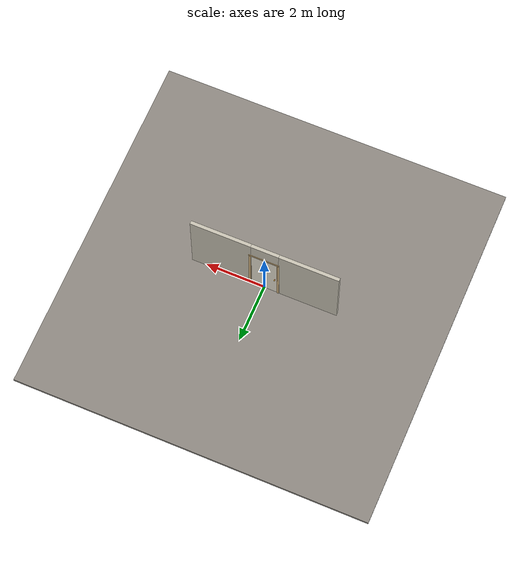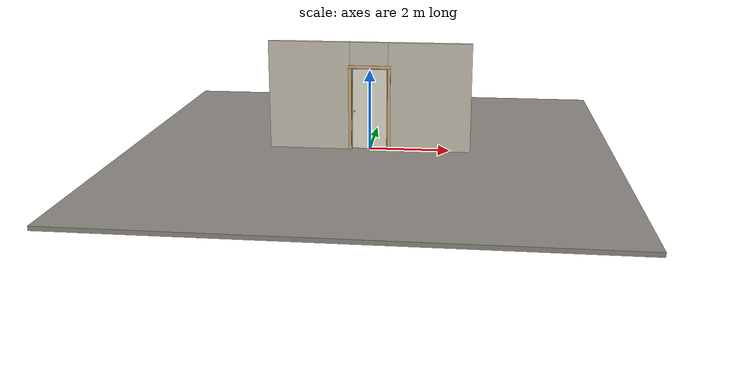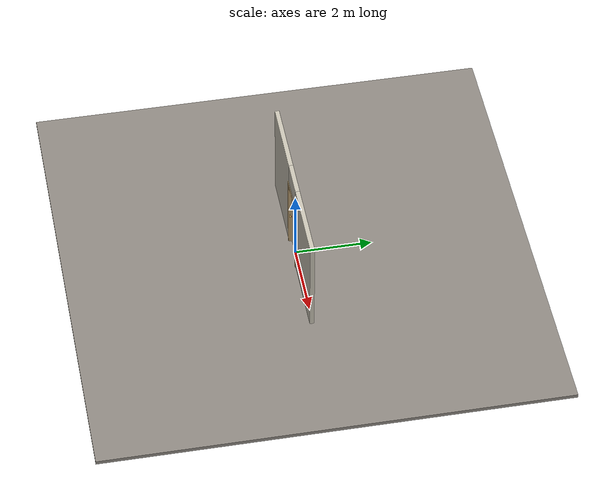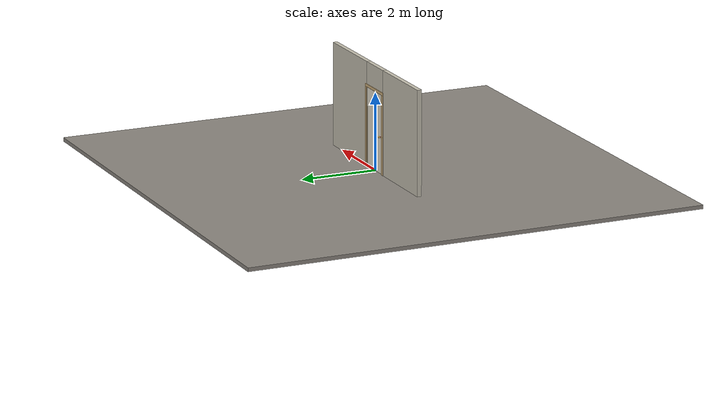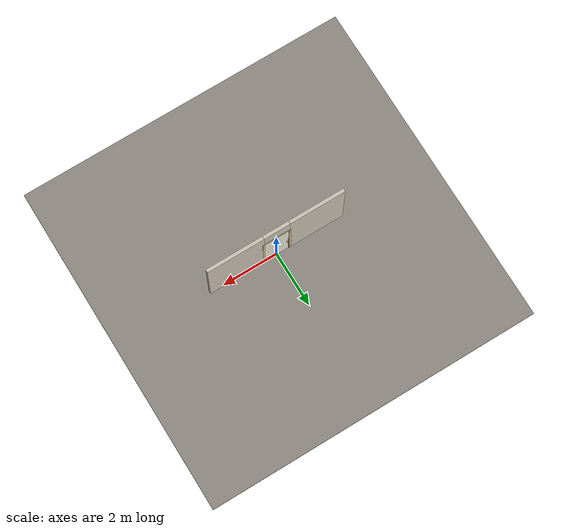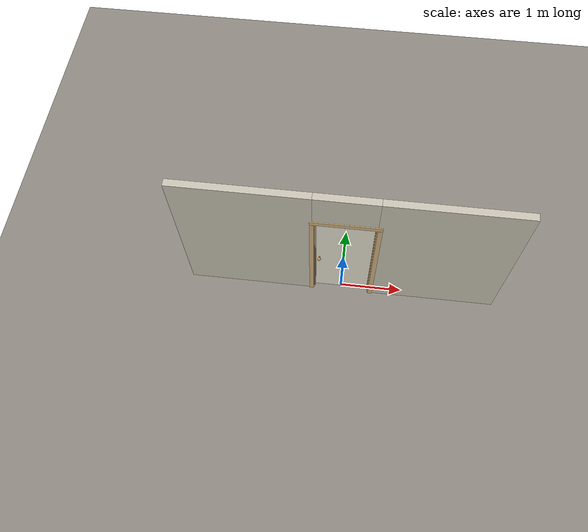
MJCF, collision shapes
<?xml version="1.0" ?>
<mujoco model="db0363_swing_single_full">
  <compiler angle="radian" meshdir="../../hardware" texturedir="../../textures" autolimits="true" inertiafromgeom="false"/>
  <option timestep="0.002" integrator="implicitfast" cone="elliptic" impratio="10" noslip_iterations="3">
    <flag multiccd="enable"/>
  </option>
  <size memory="16M"/>
  <default>
    <geom condim="4" solref="0.005 1" solimp="0.95 0.99 0.001"/>
    <joint solreflimit="0.005 1" solimplimit="0.95 0.99 0.001"/>
    <tendon solreflimit="0.005 1"/>
    <equality solref="0.002 1"/>
  </default>
  <visual>
    <headlight ambient="0.4 0.4 0.4" diffuse="0.7 0.7 0.7" specular="0.2 0.2 0.2"/>
    <quality shadowsize="4096"/>
    <map znear="0.01" zfar="60"/>
  </visual>
  <asset>
    <mesh name="hinge_96510cf394" file="hinge_96510cf394.obj"/>
    <mesh name="hinge_jamb_7fd4ca52b2" file="hinge_jamb_7fd4ca52b2.obj"/>
    <mesh name="knob_d1888f6f03" file="knob_d1888f6f03.obj"/>
    <material name="mat_floor" rgba="0.55 0.53 0.5 1" specular="0.2" shininess="0.15" reflectance="0"/>
    <material name="mat_wall" rgba="0.78 0.76 0.7 1" specular="0.2" shininess="0.1" reflectance="0"/>
    <material name="mat_leaf" rgba="0.9 0.88 0.82 1" specular="0.2" shininess="0.43" reflectance="0"/>
    <material name="mat_leaf_louver" rgba="0.765 0.748 0.697 1" specular="0.2" shininess="0.4" reflectance="0"/>
    <material name="mat_hinge" rgba="0.65 0.66 0.68 1" specular="0.74" shininess="0.5" reflectance="0.36"/>
    <material name="mat_op_brass" rgba="0.85 0.66 0.3 1" specular="0.8" shininess="0.75" reflectance="0.4"/>
    <material name="mat_trim" rgba="0.85 0.66 0.3 1" specular="0.8" shininess="0.75" reflectance="0.4"/>
    <material name="mat_bolt" rgba="0.85 0.66 0.3 1" specular="0.8" shininess="0.75" reflectance="0.4"/>
    <material name="mat_frame" rgba="0.82 0.7 0.5 1" specular="0.2" shininess="0.45" reflectance="0"/>
    <material name="mat_seal" rgba="0.1 0.1 0.1 1" specular="0.2" shininess="0.1" reflectance="0"/>
    <texture name="skybox" type="skybox" builtin="gradient" rgb1="0.6 0.7 0.85" rgb2="0.9 0.92 0.95" width="256" height="256"/>
  </asset>
  <worldbody>
    <light name="sun" pos="1.5 -2.5 4" dir="-0.3 0.5 -0.8" directional="true" diffuse="0.8 0.8 0.8" specular="0.3 0.3 0.3" castshadow="true"/>
    <light name="fill" pos="-1.5 2.5 3" dir="0.3 -0.5 -0.7" directional="true" diffuse="0.35 0.35 0.4" castshadow="false"/>
    <camera name="robot_view" pos="0 -2.575187 1.734312" xyaxes="1 0 0 0 0.26963 0.962964" fovy="52"/>
    <camera name="far_view" pos="0 2.509187 1.734312" xyaxes="-1 0 0 0 -0.26963 0.962964" fovy="52"/>
    <camera name="iso" pos="-1.932062 -2.168438 2.141063" xyaxes="0.741536 -0.670913 0 0.242917 0.268487 0.932151" fovy="46"/>
    <camera name="detail_handle" pos="-0.1915 -0.864 1.245" xyaxes="0.97561 0.219512 0 -0.070934 0.315262 0.94635" fovy="38"/>
    <geom name="floor" type="box" size="6 6 0.05" pos="0 0 -0.05" material="mat_floor" group="0" contype="1" conaffinity="1" friction="0.8 0.005 0.0001" density="2400"/>
    <geom name="wall_left" type="box" size="1.00775 0.0575 1.35" pos="-1.49225 -0.033 1.35" material="mat_wall" group="0" contype="1" conaffinity="1" friction="0.6 0.005 0.0001" density="800"/>
    <geom name="wall_right" type="box" size="1.02275 0.0575 1.35" pos="1.47725 -0.033 1.35" material="mat_wall" group="0" contype="1" conaffinity="1" friction="0.6 0.005 0.0001" density="800"/>
    <geom name="wall_header" type="box" size="0.4695 0.0575 0.303" pos="-0.015 -0.033 2.397" material="mat_wall" group="0" contype="1" conaffinity="1" friction="0.6 0.005 0.0001" density="800"/>
    <geom name="hinge_0_jamb" type="mesh" mesh="hinge_jamb_7fd4ca52b2" pos="0.4325 0.0245 0.259" quat="0 0 0 1" material="mat_hinge" group="1" contype="0" conaffinity="0" density="7850"/>
    <geom name="hinge_1_jamb" type="mesh" mesh="hinge_jamb_7fd4ca52b2" pos="0.4325 0.0245 1.025" quat="0 0 0 1" material="mat_hinge" group="1" contype="0" conaffinity="0" density="7850"/>
    <geom name="hinge_2_jamb" type="mesh" mesh="hinge_jamb_7fd4ca52b2" pos="0.4325 0.0245 1.861" quat="0 0 0 1" material="mat_hinge" group="1" contype="0" conaffinity="0" density="7850"/>
    <geom name="jamb_hinge" type="box" size="0.0095 0.0575 1.0225" pos="0.445 -0.033 1.0225" material="mat_frame" group="0" contype="1" conaffinity="1" friction="0.6 0.005 0.0001" density="400"/>
    <geom name="strike_965_wall_n" type="box" size="0.0245 0.041325 0.0167" pos="-0.46 -0.049175 0.965" material="mat_frame" group="0" contype="1" conaffinity="1" friction="0.6 0.005 0.0001" density="400"/>
    <geom name="strike_965_wall_p" type="box" size="0.0245 0.008 0.0167" pos="-0.46 0.01585 0.965" material="mat_frame" group="0" contype="1" conaffinity="1" friction="0.6 0.005 0.0001" density="400"/>
    <geom name="strike_965_ramp" type="box" size="0.0245 0.01649 0.0167" pos="-0.464636 0.028673 0.965" quat="0.977148 0 0 0.212558" material="mat_frame" group="0" contype="1" conaffinity="1" friction="0.12 0.005 0.0001" density="400"/>
    <geom name="strike_965_back" type="box" size="0.01615 0.00785 0.0167" pos="-0.46835 0 0.965" material="mat_frame" group="0" contype="1" conaffinity="1" friction="0.6 0.005 0.0001" density="400"/>
    <geom name="jamb_strike_0" type="box" size="0.0245 0.0575 0.47415" pos="-0.46 -0.033 0.47415" material="mat_frame" group="0" contype="1" conaffinity="1" friction="0.6 0.005 0.0001" density="400"/>
    <geom name="jamb_strike_1" type="box" size="0.0245 0.0575 0.53165" pos="-0.46 -0.033 1.51335" material="mat_frame" group="0" contype="1" conaffinity="1" friction="0.6 0.005 0.0001" density="400"/>
    <geom name="jamb_head" type="box" size="0.4695 0.0575 0.0095" pos="-0.015 -0.033 2.0545" material="mat_frame" group="0" contype="1" conaffinity="1" friction="0.6 0.005 0.0001" density="400"/>
    <geom name="head_stud" type="box" size="0.4695 0.0575 0.015" pos="-0.015 -0.033 2.079" material="mat_wall" group="0" contype="1" conaffinity="1" friction="0.6 0.005 0.0001" density="500"/>
    <geom name="stop_hinge" type="box" size="0.0055 0.016 1.0225" pos="0.43 -0.034 1.0225" material="mat_frame" group="0" contype="1" conaffinity="1" friction="0.6 0.005 0.0001" density="400"/>
    <geom name="stop_strike" type="box" size="0.0055 0.016 1.0225" pos="-0.43 -0.034 1.0225" material="mat_frame" group="0" contype="1" conaffinity="1" friction="0.6 0.005 0.0001" density="400"/>
    <geom name="stop_head" type="box" size="0.4355 0.016 0.0055" pos="0 -0.034 2.0395" material="mat_frame" group="0" contype="1" conaffinity="1" friction="0.6 0.005 0.0001" density="400"/>
    <geom name="seal_hinge" type="box" size="0.004 0.0015 1.0225" pos="0.4325 -0.019 1.0225" material="mat_seal" group="1" contype="0" conaffinity="0" density="1100"/>
    <geom name="seal_strike" type="box" size="0.004 0.0015 1.0225" pos="-0.4325 -0.019 1.0225" material="mat_seal" group="1" contype="0" conaffinity="0" density="1100"/>
    <geom name="seal_head" type="box" size="0.4155 0.0015 0.008" pos="0 -0.019 2.033" material="mat_seal" group="1" contype="0" conaffinity="0" density="1100"/>
    <geom name="casing_l_n" type="box" size="0.035 0.008 1.032" pos="-0.4845 -0.0985 1.0225" material="mat_frame" group="2" contype="0" conaffinity="0" density="400"/>
    <geom name="casing_r_n" type="box" size="0.035 0.008 1.032" pos="0.4845 -0.0985 1.0225" material="mat_frame" group="2" contype="0" conaffinity="0" density="400"/>
    <geom name="casing_h_n" type="box" size="0.5195 0.008 0.035" pos="0 -0.0985 2.094" material="mat_frame" group="2" contype="0" conaffinity="0" density="400"/>
    <geom name="casing_l_p" type="box" size="0.035 0.008 1.032" pos="-0.4845 0.0325 1.0225" material="mat_frame" group="2" contype="0" conaffinity="0" density="400"/>
    <geom name="casing_r_p" type="box" size="0.035 0.008 1.032" pos="0.4845 0.0325 1.0225" material="mat_frame" group="2" contype="0" conaffinity="0" density="400"/>
    <geom name="casing_h_p" type="box" size="0.5195 0.008 0.035" pos="0 0.0325 2.094" material="mat_frame" group="2" contype="0" conaffinity="0" density="400"/>
    <site name="approach_point" pos="0 -1.5 0" quat="1 0 0 0" size="0.05" rgba="0.2 0.9 0.2 0.5" group="4"/>
    <site name="goal_point" pos="0 1.5 0" quat="1 0 0 0" size="0.05" rgba="0.2 0.9 0.2 0.5" group="4"/>
    <site name="door_plane_center" pos="0 0 1.0225" quat="1 0 0 0" size="0.02" rgba="0.2 0.9 0.2 0.5" group="4"/>
    <body name="leaf" pos="0.4355 0 0">
      <inertial pos="-0.423578 0.0004 1.025662" mass="14.713015" quat="0.499623 0.500895 -0.499091 0.500389" diaginertia="0.966715266 5.093692537 6.057199931"/>
      <joint name="leaf_hinge" type="hinge" axis="0 0 -1" pos="-0.003 0.0245 0" limited="true" range="0 1.745329" solreflimit="0.02 1" damping="2.204501" frictionloss="1.796879" stiffness="6.6" springref="-0.409091" armature="0.02"/>
      <geom name="leaf_slab" type="box" size="0.432 0.0175 1.016" pos="-0.435 0 1.025" material="mat_leaf" group="0" contype="1" conaffinity="1" friction="0.35 0.005 0.0001" density="1"/>
      <geom name="leaf_louver_0" type="box" size="0.33696 0.002 0.026984" pos="-0.435 0 1.091339" quat="0.953717 0.300706 0 0" material="mat_leaf_louver" group="1" contype="0" conaffinity="0" density="1"/>
      <geom name="leaf_louver_1" type="box" size="0.33696 0.002 0.026984" pos="-0.435 0 1.142736" quat="0.953717 0.300706 0 0" material="mat_leaf_louver" group="1" contype="0" conaffinity="0" density="1"/>
      <geom name="leaf_louver_2" type="box" size="0.33696 0.002 0.026984" pos="-0.435 0 1.194134" quat="0.953717 0.300706 0 0" material="mat_leaf_louver" group="1" contype="0" conaffinity="0" density="1"/>
      <geom name="leaf_louver_3" type="box" size="0.33696 0.002 0.026984" pos="-0.435 0 1.245532" quat="0.953717 0.300706 0 0" material="mat_leaf_louver" group="1" contype="0" conaffinity="0" density="1"/>
      <geom name="leaf_louver_4" type="box" size="0.33696 0.002 0.026984" pos="-0.435 0 1.296929" quat="0.953717 0.300706 0 0" material="mat_leaf_louver" group="1" contype="0" conaffinity="0" density="1"/>
      <geom name="leaf_louver_5" type="box" size="0.33696 0.002 0.026984" pos="-0.435 0 1.348327" quat="0.953717 0.300706 0 0" material="mat_leaf_louver" group="1" contype="0" conaffinity="0" density="1"/>
      <geom name="leaf_louver_6" type="box" size="0.33696 0.002 0.026984" pos="-0.435 0 1.399725" quat="0.953717 0.300706 0 0" material="mat_leaf_louver" group="1" contype="0" conaffinity="0" density="1"/>
      <geom name="leaf_louver_7" type="box" size="0.33696 0.002 0.026984" pos="-0.435 0 1.451122" quat="0.953717 0.300706 0 0" material="mat_leaf_louver" group="1" contype="0" conaffinity="0" density="1"/>
      <geom name="leaf_louver_8" type="box" size="0.33696 0.002 0.026984" pos="-0.435 0 1.50252" quat="0.953717 0.300706 0 0" material="mat_leaf_louver" group="1" contype="0" conaffinity="0" density="1"/>
      <geom name="leaf_louver_9" type="box" size="0.33696 0.002 0.026984" pos="-0.435 0 1.553918" quat="0.953717 0.300706 0 0" material="mat_leaf_louver" group="1" contype="0" conaffinity="0" density="1"/>
      <geom name="leaf_louver_10" type="box" size="0.33696 0.002 0.026984" pos="-0.435 0 1.605315" quat="0.953717 0.300706 0 0" material="mat_leaf_louver" group="1" contype="0" conaffinity="0" density="1"/>
      <geom name="leaf_louver_11" type="box" size="0.33696 0.002 0.026984" pos="-0.435 0 1.656713" quat="0.953717 0.300706 0 0" material="mat_leaf_louver" group="1" contype="0" conaffinity="0" density="1"/>
      <geom name="leaf_louver_12" type="box" size="0.33696 0.002 0.026984" pos="-0.435 0 1.708111" quat="0.953717 0.300706 0 0" material="mat_leaf_louver" group="1" contype="0" conaffinity="0" density="1"/>
      <geom name="leaf_louver_13" type="box" size="0.33696 0.002 0.026984" pos="-0.435 0 1.759508" quat="0.953717 0.300706 0 0" material="mat_leaf_louver" group="1" contype="0" conaffinity="0" density="1"/>
      <geom name="leaf_louver_14" type="box" size="0.33696 0.002 0.026984" pos="-0.435 0 1.810906" quat="0.953717 0.300706 0 0" material="mat_leaf_louver" group="1" contype="0" conaffinity="0" density="1"/>
      <geom name="leaf_louver_15" type="box" size="0.33696 0.002 0.026984" pos="-0.435 0 1.862304" quat="0.953717 0.300706 0 0" material="mat_leaf_louver" group="1" contype="0" conaffinity="0" density="1"/>
      <geom name="leaf_louver_16" type="box" size="0.33696 0.002 0.026984" pos="-0.435 0 1.913701" quat="0.953717 0.300706 0 0" material="mat_leaf_louver" group="1" contype="0" conaffinity="0" density="1"/>
      <geom name="hinge_0" type="mesh" mesh="hinge_96510cf394" pos="-0.003 0.0245 0.259" quat="0 0 0 1" material="mat_hinge" group="1" contype="0" conaffinity="0" density="7850"/>
      <geom name="hinge_1" type="mesh" mesh="hinge_96510cf394" pos="-0.003 0.0245 1.025" quat="0 0 0 1" material="mat_hinge" group="1" contype="0" conaffinity="0" density="7850"/>
      <geom name="hinge_2" type="mesh" mesh="hinge_96510cf394" pos="-0.003 0.0245 1.861" quat="0 0 0 1" material="mat_hinge" group="1" contype="0" conaffinity="0" density="7850"/>
      <geom name="leaf_latch_bolt_faceplate" type="box" size="0.0006 0.01235 0.0267" pos="-0.8664 0 0.965" material="mat_bolt" group="1" contype="0" conaffinity="0" density="8500"/>
      <site name="leaf_edge_mid" pos="-0.867 0 1.016" quat="1 0 0 0" size="0.02" rgba="0.2 0.9 0.2 0.5" group="4"/>
      <body name="leaf_handle" pos="-0.807 0 0.965">
        <inertial pos="0 0 0" mass="1.143961" quat="0.707107 0 0 -0.707107" diaginertia="0.00031237 0.003706292 0.003706292"/>
        <joint name="leaf_handle_hinge" type="hinge" axis="0 1 0" limited="true" range="0 0.87" damping="0.143613" frictionloss="0.038" stiffness="0.5" springref="-0.5" armature="0.01"/>
        <geom name="leaf_handle_spindle" type="cylinder" size="0.006 0.0255" pos="0 0 0" quat="0.707107 -0.707107 0 0" material="mat_op_brass" group="1" contype="0" conaffinity="0" density="7850"/>
        <geom name="leaf_handle_knob_n" type="mesh" mesh="knob_d1888f6f03" pos="0 -0.0175 0" quat="0 0 -0.707107 0.707107" material="mat_op_brass" group="1" contype="0" conaffinity="0" density="3000"/>
        <geom name="leaf_handle_knob_col_n" type="sphere" size="0.0243" pos="0 -0.064 0" material="mat_op_brass" group="0" contype="1" conaffinity="1" friction="0.9 0.01 0.0001" density="3000"/>
        <geom name="leaf_handle_knob_neck_n" type="cylinder" size="0.011 0.012" pos="0 -0.0295 0" quat="0.707107 -0.707107 0 0" material="mat_op_brass" group="3" contype="1" conaffinity="1" rgba="0.8 0.3 0.3 0.25" friction="0.6 0.005 0.0001" density="3000"/>
        <geom name="leaf_handle_knob_p" type="mesh" mesh="knob_d1888f6f03" pos="0 0.0175 0" quat="0 0 0.707107 0.707107" material="mat_op_brass" group="1" contype="0" conaffinity="0" density="3000"/>
        <geom name="leaf_handle_knob_col_p" type="sphere" size="0.0243" pos="0 0.064 0" material="mat_op_brass" group="0" contype="1" conaffinity="1" friction="0.9 0.01 0.0001" density="3000"/>
        <geom name="leaf_handle_knob_neck_p" type="cylinder" size="0.011 0.012" pos="0 0.0295 0" quat="0.707107 -0.707107 0 0" material="mat_op_brass" group="3" contype="1" conaffinity="1" rgba="0.8 0.3 0.3 0.25" friction="0.6 0.005 0.0001" density="3000"/>
        <site name="leaf_handle_grip_n" pos="0 -0.064 0" quat="1 0 0 0" size="0.012" rgba="0.2 0.9 0.2 0.5" group="4"/>
        <site name="leaf_handle_grip_p" pos="0 0.064 0" quat="1 0 0 0" size="0.012" rgba="0.2 0.9 0.2 0.5" group="4"/>
      </body>
      <body name="leaf_latch_bolt" pos="-0.867 0 0.965">
        <inertial pos="0.00865 0 0" mass="0.041419" quat="0.92388 0.382683 0 0" diaginertia="0.000000798 0.000005598 0.000005598"/>
        <joint name="leaf_latch_bolt_slide" type="slide" axis="1 0 0" limited="true" range="0 0.0127" damping="2" frictionloss="0.3" stiffness="300" springref="-0.008333" armature="0.1"/>
        <geom name="leaf_latch_bolt_capsule" type="capsule" size="0.00635 0.015" pos="0.00865 0 0" quat="0.707107 0 -0.707107 0" material="mat_bolt" group="0" contype="1" conaffinity="1" friction="0.2 0.005 0.0001" density="8500"/>
      </body>
    </body>
  </worldbody>
  <tendon>
    <fixed name="leaf_latch_bolt_coupling" limited="true" range="0 10">
      <joint joint="leaf_latch_bolt_slide" coef="1"/>
      <joint joint="leaf_handle_hinge" coef="-0.015679"/>
    </fixed>
  </tendon>
  <sensor>
    <jointpos name="leaf_hinge_pos" joint="leaf_hinge"/>
    <jointvel name="leaf_hinge_vel" joint="leaf_hinge"/>
    <jointpos name="leaf_handle_hinge_pos" joint="leaf_handle_hinge"/>
    <jointvel name="leaf_handle_hinge_vel" joint="leaf_handle_hinge"/>
    <jointpos name="leaf_latch_bolt_slide_pos" joint="leaf_latch_bolt_slide"/>
    <jointvel name="leaf_latch_bolt_slide_vel" joint="leaf_latch_bolt_slide"/>
  </sensor>
</mujoco>
